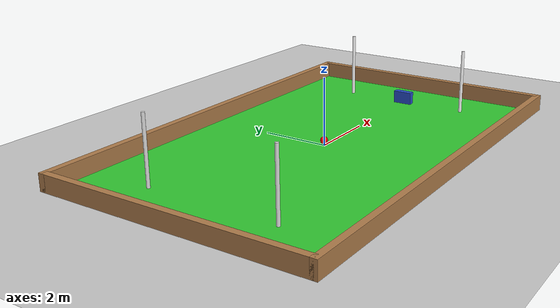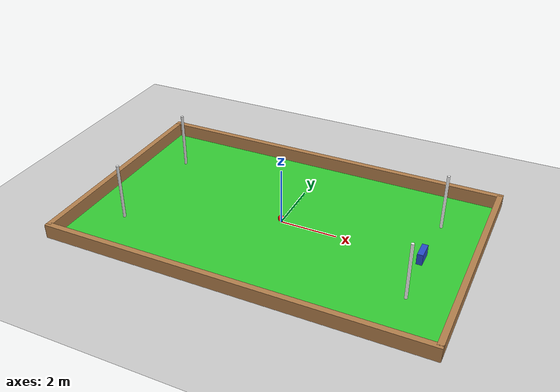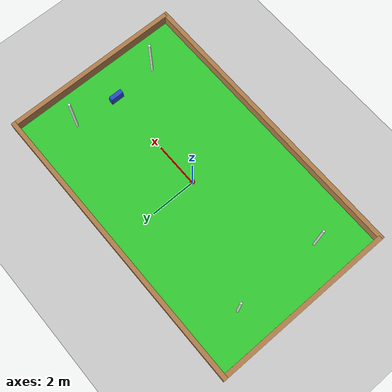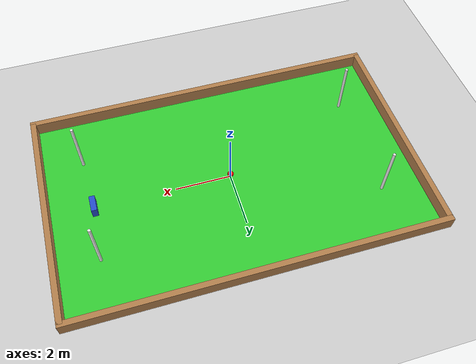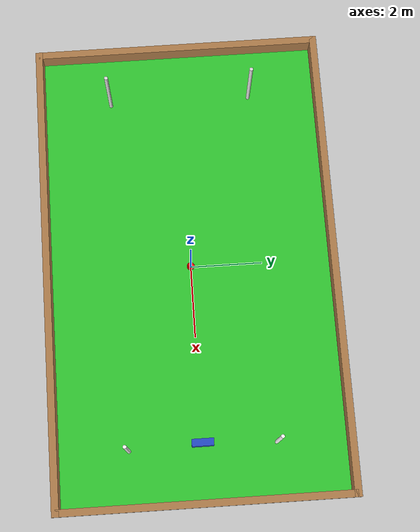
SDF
<?xml version='1.0'?>
<sdf version='1.6'>

  <world name='football_stadium'>
    <plugin name="gazebo_ros_state" filename="libgazebo_ros_state.so">
      <ros><namespace>/gazebo</namespace></ros>
      <update_rate>10.0</update_rate>
    </plugin>
    <plugin name="gazebo_ros_init" filename="libgazebo_ros_init.so"/>
    <plugin name="gazebo_ros_factory" filename="libgazebo_ros_factory.so"/>

    <include>
      <uri>model://sun</uri>
    </include>

    <model name='ground_plane'>
      <static>true</static>
      <link name='link'>
        <collision name='collision'>
          <geometry><plane><normal>0 0 1</normal><size>100 100</size></plane></geometry>
          <surface><friction><ode><mu>100</mu><mu2>50</mu2></ode></friction></surface>
        </collision>
        <visual name='visual'>
          <cast_shadows>false</cast_shadows>
          <geometry><plane><normal>0 0 1</normal><size>100 100</size></plane></geometry>
          <material>
            <script><uri>file://media/materials/scripts/gazebo.material</uri><name>Gazebo/Grey</name></script>
          </material>
        </visual>
      </link>
    </model>

   <model name='grass_field'>
      <static>true</static>
      <pose>0 0 0.005 0 0 0</pose> <link name='link'>
        <visual name='visual'>
          <geometry>
            <box>
              <size>13 8 0.01</size> </box>
          </geometry>
          <material>
            <ambient>0.2 0.8 0.2 1</ambient><diffuse>0.2 0.8 0.2 1</diffuse>
            </material>
        </visual>
        <collision name='collision'>
          <geometry>
            <box>
              <size>13 8 0.01</size>
            </box>
          </geometry>
          <surface>
            <friction>
              <ode>
                <mu>100</mu>
                <mu2>50</mu2>
              </ode>
            </friction>
          </surface>
        </collision>
      </link>
    </model>

    <model name='stadium_walls'>
      <static>true</static>
      <pose>0 0 0 0 0 0</pose>
      <link name='walls'>
        <visual name='wall_1'>
          <pose>6.5 0 0.25 0 0 0</pose>
          <geometry><box><size>0.2 8 0.5</size></box></geometry>
          <material><script><name>Gazebo/Wood</name><uri>file://media/materials/scripts/gazebo.material</uri></script></material>
        </visual>
        <collision name='coll_1'><pose>6.5 0 0.25 0 0 0</pose><geometry><box><size>0.2 8 0.5</size></box></geometry></collision>

        <visual name='wall_2'>
          <pose>-6.5 0 0.25 0 0 0</pose>
          <geometry><box><size>0.2 8 0.5</size></box></geometry>
          <material><script><name>Gazebo/Wood</name><uri>file://media/materials/scripts/gazebo.material</uri></script></material>
        </visual>
        <collision name='coll_2'><pose>-6.5 0 0.25 0 0 0</pose><geometry><box><size>0.2 8 0.5</size></box></geometry></collision>

        <visual name='wall_3'>
          <pose>0 4 0.25 0 0 0</pose>
          <geometry><box><size>13.2 0.2 0.5</size></box></geometry>
          <material><script><name>Gazebo/Wood</name><uri>file://media/materials/scripts/gazebo.material</uri></script></material>
        </visual>
        <collision name='coll_3'><pose>0 4 0.25 0 0 0</pose><geometry><box><size>13.2 0.2 0.5</size></box></geometry></collision>

        <visual name='wall_4'>
          <pose>0 -4 0.25 0 0 0</pose>
          <geometry><box><size>13.2 0.2 0.5</size></box></geometry>
          <material><script><name>Gazebo/Wood</name><uri>file://media/materials/scripts/gazebo.material</uri></script></material>
        </visual>
        <collision name='coll_4'><pose>0 -4 0.25 0 0 0</pose><geometry><box><size>13.2 0.2 0.5</size></box></geometry></collision>
      </link>
    </model>

    <model name='football_red_ball'>
      <pose>0 0 0.15 0 0 0</pose> <static>false</static>
      <link name='ball_link'>
        <inertial>
          <mass>0.43</mass>
          <inertia><ixx>0.0009</ixx><iyy>0.0009</iyy><izz>0.0009</izz></inertia>
        </inertial>
        <collision name='ball_collision'>
          <geometry><sphere><radius>0.11</radius></sphere></geometry>
          <surface><bounce><restitution_coefficient>0.7</restitution_coefficient><threshold>0</threshold></bounce></surface>
        </collision>
        <visual name='ball_visual'>
          <geometry><sphere><radius>0.11</radius></sphere></geometry>
          <material>
            <ambient>1 0 0 1</ambient><diffuse>1 0 0 1</diffuse><specular>0.1 0.1 0.1 1</specular>
          </material>
        </visual>
      </link>
    </model>

    <model name='goalie_block'>
      <pose>4.9 0 0.2 0 0 0</pose>
      <static>false</static>
      <link name='link'>
        <gravity>0</gravity>
        <inertial>
          <mass>100</mass><inertia><ixx>1</ixx><ixy>0</ixy><ixz>0</ixz><iyy>1</iyy><iyz>0</iyz><izz>1</izz></inertia>
        </inertial>
        <collision name='collision'><geometry><box><size>0.2 0.6 0.4</size></box></geometry></collision>
        <visual name='visual'>
          <geometry><box><size>0.2 0.6 0.4</size></box></geometry>
          <material><script><uri>file://media/materials/scripts/gazebo.material</uri><name>Gazebo/Blue</name></script></material>
        </visual>
      </link>
    </model>

    <model name='goal_posts'>
      <pose>5 0 0.01 0 0 0</pose>
      <static>true</static>
      <link name='post_left'>
        <pose>0 2.0 1 0 0 0</pose>
        <collision name='left_collision'><geometry><cylinder><radius>0.05</radius><length>2.0</length></cylinder></geometry></collision>
        <visual name='left_visual'><geometry><cylinder><radius>0.05</radius><length>2.0</length></cylinder></geometry><material><ambient>1 1 1 1</ambient><diffuse>1 1 1 1</diffuse></material></visual>
      </link>
      <link name='post_right'>
        <pose>0 -2.0 1 0 0 0</pose>
        <collision name='right_collision'><geometry><cylinder><radius>0.05</radius><length>2.0</length></cylinder></geometry></collision>
        <visual name='right_visual'><geometry><cylinder><radius>0.05</radius><length>2.0</length></cylinder></geometry><material><ambient>1 1 1 1</ambient><diffuse>1 1 1 1</diffuse></material></visual>
      </link>
    </model>

    <model name='goal_posts_training'>
      <pose>-5 0 0.01 0 0 3.14159</pose>
      <static>true</static>
      <link name='post_left'>
        <pose>0 2.0 1 0 0 0</pose>
        <collision name='left_collision'><geometry><cylinder><radius>0.05</radius><length>2.0</length></cylinder></geometry></collision>
        <visual name='left_visual'><geometry><cylinder><radius>0.05</radius><length>2.0</length></cylinder></geometry><material><ambient>0.9 0.9 0.9 1</ambient><diffuse>0.9 0.9 0.9 1</diffuse></material></visual>
      </link>
      <link name='post_right'>
        <pose>0 -2.0 1 0 0 0</pose>
        <collision name='right_collision'><geometry><cylinder><radius>0.05</radius><length>2.0</length></cylinder></geometry></collision>
        <visual name='right_visual'><geometry><cylinder><radius>0.05</radius><length>2.0</length></cylinder></geometry><material><ambient>0.9 0.9 0.9 1</ambient><diffuse>0.9 0.9 0.9 1</diffuse></material></visual>
      </link>
    </model>

    <scene>
      <ambient>0.6 0.6 0.6 1</ambient>
      <background>0.7 0.8 1 1</background>
      <shadows>true</shadows>
    </scene>

  </world>
</sdf>
